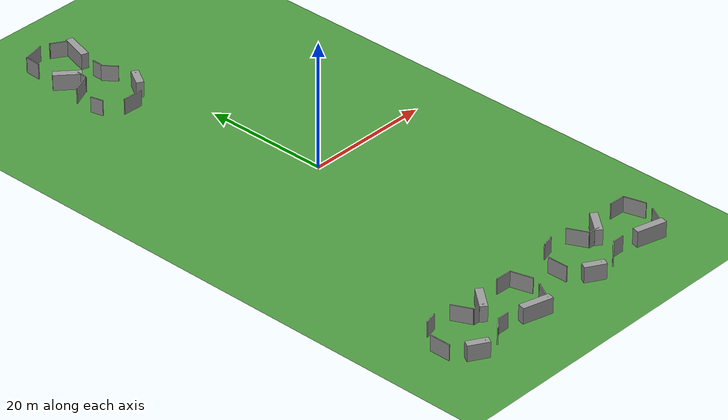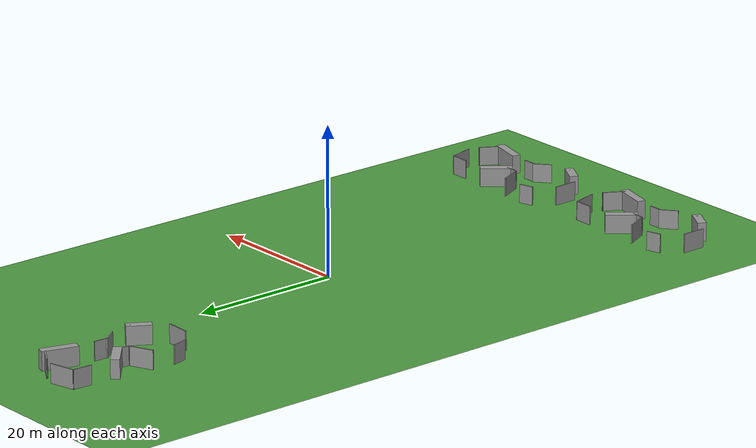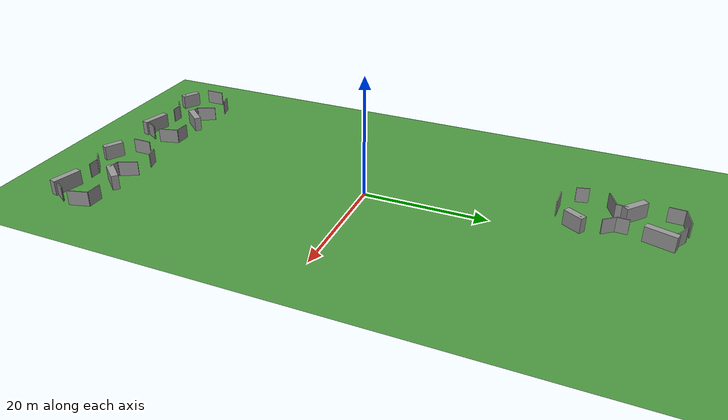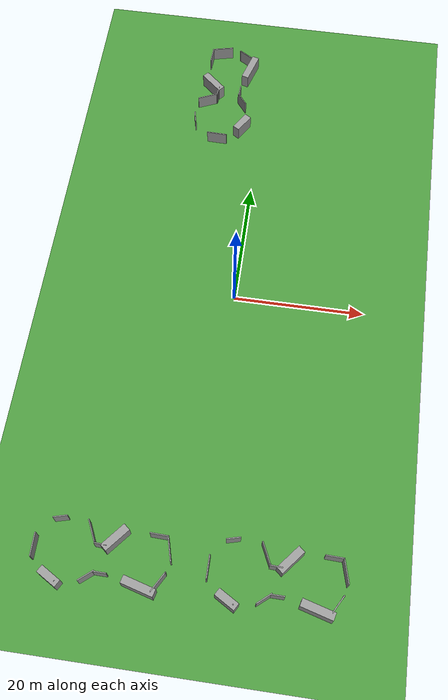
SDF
<sdf version="1.7">
 <world name="default">
  <light name="sun" type="directional">
   <pose>0 0 10 0 -0 0</pose>
   <diffuse>0.8 0.8 0.8 1</diffuse>
   <specular>0.2 0.2 0.2 1</specular>
   <attenuation>
    <range>1000</range>
    <constant>0.9</constant>
    <linear>0.01</linear>
    <quadratic>0.001</quadratic>
   </attenuation>
   <direction>-0.5 0.1 -0.9</direction>
   <spot><inner_angle>0</inner_angle><outer_angle>0</outer_angle><falloff>0</falloff></spot>
  </light>
  <model name="ground_plane">
   <static>1</static>
   <link name="link">
    <collision name="collision">
     <geometry><plane><normal>0 0 1</normal><size>100 100</size></plane></geometry>
     <surface><friction><ode><mu>100</mu><mu2>50</mu2></ode></friction></surface>
    </collision>
    <visual name="visual">
     <cast_shadows>0</cast_shadows>
     <geometry><plane><normal>0 0 1</normal><size>100 100</size></plane></geometry>
     <material>
      <script><uri>file://media/materials/scripts/gazebo.material</uri><name>Gazebo/Grass</name></script>
     </material>
    </visual>
   </link>
  </model>
  <gravity>0 0 -9.8</gravity>
  <magnetic_field>6e-06 2.3e-05 -4.2e-05</magnetic_field>
  <atmosphere type="adiabatic"/>
  <physics name="default_physics" default="0" type="ode">
   <max_step_size>0.001</max_step_size>
   <real_time_factor>1</real_time_factor>
   <real_time_update_rate>1000</real_time_update_rate>
  </physics>
  <scene><ambient>0.4 0.4 0.4 1</ambient><background>0.7 0.7 0.7 1</background><shadows>1</shadows></scene>
  <audio><device>default</device></audio>
  <spherical_coordinates>
   <surface_model>EARTH_WGS84</surface_model>
   <latitude_deg>0</latitude_deg>
   <longitude_deg>0</longitude_deg>
   <elevation>0</elevation>
   <heading_deg>0</heading_deg>
  </spherical_coordinates>
  <model name="TestBuilding">
   <pose>-12.3162 -42.0159 0 0 -0 0</pose>
   <link name="Wall_0">
    <collision name="Wall_0_Collision">
     <geometry><box><size>3.25 0.15 2.5</size></box></geometry>
     <pose>0 0 1.25 0 -0 0</pose>
    </collision>
    <visual name="Wall_0_Visual">
     <pose>0 0 1.25 0 -0 0</pose>
     <geometry><box><size>3.25 0.15 2.5</size></box></geometry>
     <material>
      <script><uri>file://media/materials/scripts/gazebo.material</uri><name>Gazebo/Grey</name></script>
      <ambient>1 1 1 1</ambient>
     </material>
     <meta><layer>0</layer></meta>
    </visual>
    <pose>-9.39109 0.282277 0 0 -0 1.5708</pose>
   </link>
   <link name="Wall_11">
    <collision name="Wall_11_Collision">
     <geometry><box><size>2.50475 0.15 2.5</size></box></geometry>
     <pose>0 0 1.25 0 -0 0</pose>
    </collision>
    <visual name="Wall_11_Visual">
     <pose>0 0 1.25 0 -0 0</pose>
     <geometry><box><size>2.50475 0.15 2.5</size></box></geometry>
     <material>
      <script><uri>file://media/materials/scripts/gazebo.material</uri><name>Gazebo/Grey</name></script>
      <ambient>1 1 1 1</ambient>
     </material>
     <meta><layer>0</layer></meta>
    </visual>
    <pose>-1.4998 -2.72673 0 0 -0 0.687447</pose>
   </link>
   <link name="Wall_12">
    <collision name="Wall_12_Collision">
     <geometry><box><size>1.90786 0.15 2.5</size></box></geometry>
     <pose>0 0 1.25 0 -0 0</pose>
    </collision>
    <visual name="Wall_12_Visual">
     <pose>0 0 1.25 0 -0 0</pose>
     <geometry><box><size>1.90786 0.15 2.5</size></box></geometry>
     <material>
      <script><uri>file://media/materials/scripts/gazebo.material</uri><name>Gazebo/Grey</name></script>
      <ambient>1 1 1 1</ambient>
     </material>
     <meta><layer>0</layer></meta>
    </visual>
    <pose>0.242546 -2.07721 0 0 -0 -0.005173</pose>
   </link>
   <link name="Wall_14">
    <collision name="Wall_14_Collision">
     <geometry><box><size>4.74042 1.14 2.5</size></box></geometry>
     <pose>0 0 1.25 0 -0 0</pose>
    </collision>
    <visual name="Wall_14_Visual">
     <pose>0 0 1.25 0 -0 0</pose>
     <geometry><box><size>4.74042 1.14 2.5</size></box></geometry>
     <material>
      <script><uri>file://media/materials/scripts/gazebo.material</uri><name>Gazebo/Grey</name></script>
      <ambient>1 1 1 1</ambient>
     </material>
     <meta><layer>0</layer></meta>
    </visual>
    <pose>5.6341 -3.0791 0 0 -0 -0.261819</pose>
   </link>
   <link name="Wall_15">
    <collision name="Wall_15_Collision">
     <geometry><box><size>3.25 0.15 2.5</size></box></geometry>
     <pose>0 0 1.25 0 -0 0</pose>
    </collision>
    <visual name="Wall_15_Visual">
     <pose>0 0 1.25 0 -0 0</pose>
     <geometry><box><size>3.25 0.15 2.5</size></box></geometry>
     <material>
      <script><uri>file://media/materials/scripts/gazebo.material</uri><name>Gazebo/Grey</name></script>
      <ambient>1 1 1 1</ambient>
     </material>
     <meta><layer>0</layer></meta>
    </visual>
    <pose>8.14796 -2.20274 0 0 -0 1.04729</pose>
   </link>
   <link name="Wall_16">
    <collision name="Wall_16_Collision">
     <geometry><box><size>0.15 0.15 2.5</size></box></geometry>
     <pose>0 0 1.25 0 -0 0</pose>
    </collision>
    <visual name="Wall_16_Visual">
     <pose>0 0 1.25 0 -0 0</pose>
     <geometry><box><size>0.15 0.15 2.5</size></box></geometry>
     <material>
      <script><uri>file://media/materials/scripts/gazebo.material</uri><name>Gazebo/Grey</name></script>
      <ambient>1 1 1 1</ambient>
     </material>
     <meta><layer>0</layer></meta>
    </visual>
    <pose>8.92282 -0.860369 0 0 -0 0</pose>
   </link>
   <link name="Wall_18">
    <collision name="Wall_18_Collision">
     <geometry><box><size>3.5 0.15 2.5</size></box></geometry>
     <pose>0 0 1.25 0 -0 0</pose>
    </collision>
    <visual name="Wall_18_Visual">
     <pose>0 0 1.25 0 -0 0</pose>
     <geometry><box><size>3.5 0.15 2.5</size></box></geometry>
     <material>
      <script><uri>file://media/materials/scripts/gazebo.material</uri><name>Gazebo/Grey</name></script>
      <ambient>1 1 1 1</ambient>
     </material>
     <meta><layer>0</layer></meta>
    </visual>
    <pose>8.94071 2.30098 0 0 -0 1.8326</pose>
   </link>
   <link name="Wall_19">
    <collision name="Wall_19_Collision">
     <geometry><box><size>2.60792 0.15 2.5</size></box></geometry>
     <pose>0 0 1.25 0 -0 0</pose>
    </collision>
    <visual name="Wall_19_Visual">
     <pose>0 0 1.25 0 -0 0</pose>
     <geometry><box><size>2.60792 0.15 2.5</size></box></geometry>
     <material>
      <script><uri>file://media/materials/scripts/gazebo.material</uri><name>Gazebo/Grey</name></script>
      <ambient>1 1 1 1</ambient>
     </material>
     <meta><layer>0</layer></meta>
    </visual>
    <pose>7.27901 3.96268 0 0 -0 3.10596</pose>
   </link>
   <link name="Wall_21">
    <collision name="Wall_21_Collision">
     <geometry><box><size>4.20051 1.14 2.5</size></box></geometry>
     <pose>0 0 1.25 0 -0 0</pose>
    </collision>
    <visual name="Wall_21_Visual">
     <pose>0 0 1.25 0 -0 0</pose>
     <geometry><box><size>4.20051 1.14 2.5</size></box></geometry>
     <material>
      <script><uri>file://media/materials/scripts/gazebo.material</uri><name>Gazebo/Grey</name></script>
      <ambient>1 1 1 1</ambient>
     </material>
     <meta><layer>0</layer></meta>
    </visual>
    <pose>1.4321 2.7309 0 0 -0 -2.26503</pose>
   </link>
   <link name="Wall_22">
    <collision name="Wall_22_Collision">
     <geometry><box><size>1.81594 0.15 2.5</size></box></geometry>
     <pose>0 0 1.25 0 -0 0</pose>
    </collision>
    <visual name="Wall_22_Visual">
     <pose>0 0 1.25 0 -0 0</pose>
     <geometry><box><size>1.81594 0.15 2.5</size></box></geometry>
     <material>
      <script><uri>file://media/materials/scripts/gazebo.material</uri><name>Gazebo/Grey</name></script>
      <ambient>1 1 1 1</ambient>
     </material>
     <meta><layer>0</layer></meta>
    </visual>
    <pose>-0.378827 1.59643 0 0 -0 3.09171</pose>
   </link>
   <link name="Wall_23">
    <collision name="Wall_23_Collision">
     <geometry><box><size>0.15 0.15 2.5</size></box></geometry>
     <pose>0 0 1.25 0 -0 0</pose>
    </collision>
    <visual name="Wall_23_Visual">
     <pose>0 0 1.25 0 -0 0</pose>
     <geometry><box><size>0.15 0.15 2.5</size></box></geometry>
     <material>
      <script><uri>file://media/materials/scripts/gazebo.material</uri><name>Gazebo/Grey</name></script>
      <ambient>1 1 1 1</ambient>
     </material>
     <meta><layer>0</layer></meta>
    </visual>
    <pose>-1.21076 1.73101 0 0 -0 0</pose>
   </link>
   <link name="Wall_25">
    <collision name="Wall_25_Collision">
     <geometry><box><size>3.24004 1.14 2.5</size></box></geometry>
     <pose>0 0 1.25 0 -0 0</pose>
    </collision>
    <visual name="Wall_25_Visual">
     <pose>0 0 1.25 0 -0 0</pose>
     <geometry><box><size>3.24004 1.14 2.5</size></box></geometry>
     <material>
      <script><uri>file://media/materials/scripts/gazebo.material</uri><name>Gazebo/Grey</name></script>
      <ambient>1 1 1 1</ambient>
     </material>
     <meta><layer>0</layer></meta>
    </visual>
    <pose>-6.3549 -3.5061 0 0 -0 -0.523754</pose>
   </link>
   <link name="Wall_26">
    <collision name="Wall_26_Collision">
     <geometry><box><size>0.15 0.15 2.5</size></box></geometry>
     <pose>0 0 1.25 0 -0 0</pose>
    </collision>
    <visual name="Wall_26_Visual">
     <pose>0 0 1.25 0 -0 0</pose>
     <geometry><box><size>0.15 0.15 2.5</size></box></geometry>
     <material>
      <script><uri>file://media/materials/scripts/gazebo.material</uri><name>Gazebo/Grey</name></script>
      <ambient>1 1 1 1</ambient>
     </material>
     <meta><layer>0</layer></meta>
    </visual>
    <pose>-5.4459 -4.0311 0 0 -0 0</pose>
   </link>
   <link name="Wall_28">
    <collision name="Wall_28_Collision">
     <geometry><box><size>2 0.15 2.5</size></box></geometry>
     <pose>0 0 1.25 0 -0 0</pose>
    </collision>
    <visual name="Wall_28_Visual">
     <pose>0 0 1.25 0 -0 0</pose>
     <geometry><box><size>2 0.15 2.5</size></box></geometry>
     <material>
      <script><uri>file://media/materials/scripts/gazebo.material</uri><name>Gazebo/Grey</name></script>
      <ambient>1 1 1 1</ambient>
     </material>
     <meta><layer>0</layer></meta>
    </visual>
    <pose>-6.52358 4.47866 0 0 -0 0.261799</pose>
   </link>
   <link name="Wall_8">
    <collision name="Wall_8_Collision">
     <geometry><box><size>3.28723 0.15 2.5</size></box></geometry>
     <pose>0 0 1.25 0 -0 0</pose>
    </collision>
    <visual name="Wall_8_Visual">
     <pose>0 0 1.25 0 -0 0</pose>
     <geometry><box><size>3.28723 0.15 2.5</size></box></geometry>
     <material>
      <script><uri>file://media/materials/scripts/gazebo.material</uri><name>Gazebo/Grey</name></script>
      <ambient>1 1 1 1</ambient>
     </material>
     <meta><layer>0</layer></meta>
    </visual>
    <pose>-1.88343 3.14807 0 0 -0 -1.12759</pose>
   </link>
   <static>1</static>
  </model>
  <model name="TestBuilding_0">
   <pose>11.5046 -41.5796 0 0 -0 0</pose>
   <link name="Wall_0">
    <collision name="Wall_0_Collision">
     <geometry><box><size>3.25 0.15 2.5</size></box></geometry>
     <pose>0 0 1.25 0 -0 0</pose>
    </collision>
    <visual name="Wall_0_Visual">
     <pose>0 0 1.25 0 -0 0</pose>
     <geometry><box><size>3.25 0.15 2.5</size></box></geometry>
     <material>
      <script><uri>file://media/materials/scripts/gazebo.material</uri><name>Gazebo/Grey</name></script>
      <ambient>1 1 1 1</ambient>
     </material>
     <meta><layer>0</layer></meta>
    </visual>
    <pose>-9.39109 0.282277 0 0 -0 1.5708</pose>
   </link>
   <link name="Wall_11">
    <collision name="Wall_11_Collision">
     <geometry><box><size>2.50475 0.15 2.5</size></box></geometry>
     <pose>0 0 1.25 0 -0 0</pose>
    </collision>
    <visual name="Wall_11_Visual">
     <pose>0 0 1.25 0 -0 0</pose>
     <geometry><box><size>2.50475 0.15 2.5</size></box></geometry>
     <material>
      <script><uri>file://media/materials/scripts/gazebo.material</uri><name>Gazebo/Grey</name></script>
      <ambient>1 1 1 1</ambient>
     </material>
     <meta><layer>0</layer></meta>
    </visual>
    <pose>-1.4998 -2.72673 0 0 -0 0.687447</pose>
   </link>
   <link name="Wall_12">
    <collision name="Wall_12_Collision">
     <geometry><box><size>1.90786 0.15 2.5</size></box></geometry>
     <pose>0 0 1.25 0 -0 0</pose>
    </collision>
    <visual name="Wall_12_Visual">
     <pose>0 0 1.25 0 -0 0</pose>
     <geometry><box><size>1.90786 0.15 2.5</size></box></geometry>
     <material>
      <script><uri>file://media/materials/scripts/gazebo.material</uri><name>Gazebo/Grey</name></script>
      <ambient>1 1 1 1</ambient>
     </material>
     <meta><layer>0</layer></meta>
    </visual>
    <pose>0.242546 -2.07721 0 0 -0 -0.005173</pose>
   </link>
   <link name="Wall_14">
    <collision name="Wall_14_Collision">
     <geometry><box><size>4.74042 1.14 2.5</size></box></geometry>
     <pose>0 0 1.25 0 -0 0</pose>
    </collision>
    <visual name="Wall_14_Visual">
     <pose>0 0 1.25 0 -0 0</pose>
     <geometry><box><size>4.74042 1.14 2.5</size></box></geometry>
     <material>
      <script><uri>file://media/materials/scripts/gazebo.material</uri><name>Gazebo/Grey</name></script>
      <ambient>1 1 1 1</ambient>
     </material>
     <meta><layer>0</layer></meta>
    </visual>
    <pose>5.6341 -3.0791 0 0 -0 -0.261819</pose>
   </link>
   <link name="Wall_15">
    <collision name="Wall_15_Collision">
     <geometry><box><size>3.25 0.15 2.5</size></box></geometry>
     <pose>0 0 1.25 0 -0 0</pose>
    </collision>
    <visual name="Wall_15_Visual">
     <pose>0 0 1.25 0 -0 0</pose>
     <geometry><box><size>3.25 0.15 2.5</size></box></geometry>
     <material>
      <script><uri>file://media/materials/scripts/gazebo.material</uri><name>Gazebo/Grey</name></script>
      <ambient>1 1 1 1</ambient>
     </material>
     <meta><layer>0</layer></meta>
    </visual>
    <pose>8.14796 -2.20274 0 0 -0 1.04729</pose>
   </link>
   <link name="Wall_16">
    <collision name="Wall_16_Collision">
     <geometry><box><size>0.15 0.15 2.5</size></box></geometry>
     <pose>0 0 1.25 0 -0 0</pose>
    </collision>
    <visual name="Wall_16_Visual">
     <pose>0 0 1.25 0 -0 0</pose>
     <geometry><box><size>0.15 0.15 2.5</size></box></geometry>
     <material>
      <script><uri>file://media/materials/scripts/gazebo.material</uri><name>Gazebo/Grey</name></script>
      <ambient>1 1 1 1</ambient>
     </material>
     <meta><layer>0</layer></meta>
    </visual>
    <pose>8.92282 -0.860369 0 0 -0 0</pose>
   </link>
   <link name="Wall_18">
    <collision name="Wall_18_Collision">
     <geometry><box><size>3.5 0.15 2.5</size></box></geometry>
     <pose>0 0 1.25 0 -0 0</pose>
    </collision>
    <visual name="Wall_18_Visual">
     <pose>0 0 1.25 0 -0 0</pose>
     <geometry><box><size>3.5 0.15 2.5</size></box></geometry>
     <material>
      <script><uri>file://media/materials/scripts/gazebo.material</uri><name>Gazebo/Grey</name></script>
      <ambient>1 1 1 1</ambient>
     </material>
     <meta><layer>0</layer></meta>
    </visual>
    <pose>8.94071 2.30098 0 0 -0 1.8326</pose>
   </link>
   <link name="Wall_19">
    <collision name="Wall_19_Collision">
     <geometry><box><size>2.60792 0.15 2.5</size></box></geometry>
     <pose>0 0 1.25 0 -0 0</pose>
    </collision>
    <visual name="Wall_19_Visual">
     <pose>0 0 1.25 0 -0 0</pose>
     <geometry><box><size>2.60792 0.15 2.5</size></box></geometry>
     <material>
      <script><uri>file://media/materials/scripts/gazebo.material</uri><name>Gazebo/Grey</name></script>
      <ambient>1 1 1 1</ambient>
     </material>
     <meta><layer>0</layer></meta>
    </visual>
    <pose>7.27901 3.96268 0 0 -0 3.10596</pose>
   </link>
   <link name="Wall_21">
    <collision name="Wall_21_Collision">
     <geometry><box><size>4.20051 1.14 2.5</size></box></geometry>
     <pose>0 0 1.25 0 -0 0</pose>
    </collision>
    <visual name="Wall_21_Visual">
     <pose>0 0 1.25 0 -0 0</pose>
     <geometry><box><size>4.20051 1.14 2.5</size></box></geometry>
     <material>
      <script><uri>file://media/materials/scripts/gazebo.material</uri><name>Gazebo/Grey</name></script>
      <ambient>1 1 1 1</ambient>
     </material>
     <meta><layer>0</layer></meta>
    </visual>
    <pose>1.4321 2.7309 0 0 -0 -2.26503</pose>
   </link>
   <link name="Wall_22">
    <collision name="Wall_22_Collision">
     <geometry><box><size>1.81594 0.15 2.5</size></box></geometry>
     <pose>0 0 1.25 0 -0 0</pose>
    </collision>
    <visual name="Wall_22_Visual">
     <pose>0 0 1.25 0 -0 0</pose>
     <geometry><box><size>1.81594 0.15 2.5</size></box></geometry>
     <material>
      <script><uri>file://media/materials/scripts/gazebo.material</uri><name>Gazebo/Grey</name></script>
      <ambient>1 1 1 1</ambient>
     </material>
     <meta><layer>0</layer></meta>
    </visual>
    <pose>-0.378827 1.59643 0 0 -0 3.09171</pose>
   </link>
   <link name="Wall_23">
    <collision name="Wall_23_Collision">
     <geometry><box><size>0.15 0.15 2.5</size></box></geometry>
     <pose>0 0 1.25 0 -0 0</pose>
    </collision>
    <visual name="Wall_23_Visual">
     <pose>0 0 1.25 0 -0 0</pose>
     <geometry><box><size>0.15 0.15 2.5</size></box></geometry>
     <material>
      <script><uri>file://media/materials/scripts/gazebo.material</uri><name>Gazebo/Grey</name></script>
      <ambient>1 1 1 1</ambient>
     </material>
     <meta><layer>0</layer></meta>
    </visual>
    <pose>-1.21076 1.73101 0 0 -0 0</pose>
   </link>
   <link name="Wall_25">
    <collision name="Wall_25_Collision">
     <geometry><box><size>3.24004 1.14 2.5</size></box></geometry>
     <pose>0 0 1.25 0 -0 0</pose>
    </collision>
    <visual name="Wall_25_Visual">
     <pose>0 0 1.25 0 -0 0</pose>
     <geometry><box><size>3.24004 1.14 2.5</size></box></geometry>
     <material>
      <script><uri>file://media/materials/scripts/gazebo.material</uri><name>Gazebo/Grey</name></script>
      <ambient>1 1 1 1</ambient>
     </material>
     <meta><layer>0</layer></meta>
    </visual>
    <pose>-6.3549 -3.5061 0 0 -0 -0.523754</pose>
   </link>
   <link name="Wall_26">
    <collision name="Wall_26_Collision">
     <geometry><box><size>0.15 0.15 2.5</size></box></geometry>
     <pose>0 0 1.25 0 -0 0</pose>
    </collision>
    <visual name="Wall_26_Visual">
     <pose>0 0 1.25 0 -0 0</pose>
     <geometry><box><size>0.15 0.15 2.5</size></box></geometry>
     <material>
      <script><uri>file://media/materials/scripts/gazebo.material</uri><name>Gazebo/Grey</name></script>
      <ambient>1 1 1 1</ambient>
     </material>
     <meta><layer>0</layer></meta>
    </visual>
    <pose>-5.4459 -4.0311 0 0 -0 0</pose>
   </link>
   <link name="Wall_28">
    <collision name="Wall_28_Collision">
     <geometry><box><size>2 0.15 2.5</size></box></geometry>
     <pose>0 0 1.25 0 -0 0</pose>
    </collision>
    <visual name="Wall_28_Visual">
     <pose>0 0 1.25 0 -0 0</pose>
     <geometry><box><size>2 0.15 2.5</size></box></geometry>
     <material>
      <script><uri>file://media/materials/scripts/gazebo.material</uri><name>Gazebo/Grey</name></script>
      <ambient>1 1 1 1</ambient>
     </material>
     <meta><layer>0</layer></meta>
    </visual>
    <pose>-6.52358 4.47866 0 0 -0 0.261799</pose>
   </link>
   <link name="Wall_8">
    <collision name="Wall_8_Collision">
     <geometry><box><size>3.28723 0.15 2.5</size></box></geometry>
     <pose>0 0 1.25 0 -0 0</pose>
    </collision>
    <visual name="Wall_8_Visual">
     <pose>0 0 1.25 0 -0 0</pose>
     <geometry><box><size>3.28723 0.15 2.5</size></box></geometry>
     <material>
      <script><uri>file://media/materials/scripts/gazebo.material</uri><name>Gazebo/Grey</name></script>
      <ambient>1 1 1 1</ambient>
     </material>
     <meta><layer>0</layer></meta>
    </visual>
    <pose>-1.88343 3.14807 0 0 -0 -1.12759</pose>
   </link>
   <static>1</static>
  </model>
  <model name="TestBuilding_1">
   <pose>-6.47795 38.4325 0 0 -0 1.54554</pose>
   <link name="Wall_0">
    <collision name="Wall_0_Collision">
     <geometry><box><size>3.25 0.15 2.5</size></box></geometry>
     <pose>0 0 1.25 0 -0 0</pose>
    </collision>
    <visual name="Wall_0_Visual">
     <pose>0 0 1.25 0 -0 0</pose>
     <geometry><box><size>3.25 0.15 2.5</size></box></geometry>
     <material>
      <script><uri>file://media/materials/scripts/gazebo.material</uri><name>Gazebo/Grey</name></script>
      <ambient>1 1 1 1</ambient>
     </material>
     <meta><layer>0</layer></meta>
    </visual>
    <pose>-9.39109 0.282277 0 0 -0 1.5708</pose>
   </link>
   <link name="Wall_11">
    <collision name="Wall_11_Collision">
     <geometry><box><size>2.50475 0.15 2.5</size></box></geometry>
     <pose>0 0 1.25 0 -0 0</pose>
    </collision>
    <visual name="Wall_11_Visual">
     <pose>0 0 1.25 0 -0 0</pose>
     <geometry><box><size>2.50475 0.15 2.5</size></box></geometry>
     <material>
      <script><uri>file://media/materials/scripts/gazebo.material</uri><name>Gazebo/Grey</name></script>
      <ambient>1 1 1 1</ambient>
     </material>
     <meta><layer>0</layer></meta>
    </visual>
    <pose>-1.4998 -2.72673 0 0 -0 0.687447</pose>
   </link>
   <link name="Wall_12">
    <collision name="Wall_12_Collision">
     <geometry><box><size>1.90786 0.15 2.5</size></box></geometry>
     <pose>0 0 1.25 0 -0 0</pose>
    </collision>
    <visual name="Wall_12_Visual">
     <pose>0 0 1.25 0 -0 0</pose>
     <geometry><box><size>1.90786 0.15 2.5</size></box></geometry>
     <material>
      <script><uri>file://media/materials/scripts/gazebo.material</uri><name>Gazebo/Grey</name></script>
      <ambient>1 1 1 1</ambient>
     </material>
     <meta><layer>0</layer></meta>
    </visual>
    <pose>0.242546 -2.07721 0 0 -0 -0.005173</pose>
   </link>
   <link name="Wall_14">
    <collision name="Wall_14_Collision">
     <geometry><box><size>4.74042 1.14 2.5</size></box></geometry>
     <pose>0 0 1.25 0 -0 0</pose>
    </collision>
    <visual name="Wall_14_Visual">
     <pose>0 0 1.25 0 -0 0</pose>
     <geometry><box><size>4.74042 1.14 2.5</size></box></geometry>
     <material>
      <script><uri>file://media/materials/scripts/gazebo.material</uri><name>Gazebo/Grey</name></script>
      <ambient>1 1 1 1</ambient>
     </material>
     <meta><layer>0</layer></meta>
    </visual>
    <pose>5.6341 -3.0791 0 0 -0 -0.261819</pose>
   </link>
   <link name="Wall_15">
    <collision name="Wall_15_Collision">
     <geometry><box><size>3.25 0.15 2.5</size></box></geometry>
     <pose>0 0 1.25 0 -0 0</pose>
    </collision>
    <visual name="Wall_15_Visual">
     <pose>0 0 1.25 0 -0 0</pose>
     <geometry><box><size>3.25 0.15 2.5</size></box></geometry>
     <material>
      <script><uri>file://media/materials/scripts/gazebo.material</uri><name>Gazebo/Grey</name></script>
      <ambient>1 1 1 1</ambient>
     </material>
     <meta><layer>0</layer></meta>
    </visual>
    <pose>8.14796 -2.20274 0 0 -0 1.04729</pose>
   </link>
   <link name="Wall_16">
    <collision name="Wall_16_Collision">
     <geometry><box><size>0.15 0.15 2.5</size></box></geometry>
     <pose>0 0 1.25 0 -0 0</pose>
    </collision>
    <visual name="Wall_16_Visual">
     <pose>0 0 1.25 0 -0 0</pose>
     <geometry><box><size>0.15 0.15 2.5</size></box></geometry>
     <material>
      <script><uri>file://media/materials/scripts/gazebo.material</uri><name>Gazebo/Grey</name></script>
      <ambient>1 1 1 1</ambient>
     </material>
     <meta><layer>0</layer></meta>
    </visual>
    <pose>8.92282 -0.860369 0 0 -0 0</pose>
   </link>
   <link name="Wall_18">
    <collision name="Wall_18_Collision">
     <geometry><box><size>3.5 0.15 2.5</size></box></geometry>
     <pose>0 0 1.25 0 -0 0</pose>
    </collision>
    <visual name="Wall_18_Visual">
     <pose>0 0 1.25 0 -0 0</pose>
     <geometry><box><size>3.5 0.15 2.5</size></box></geometry>
     <material>
      <script><uri>file://media/materials/scripts/gazebo.material</uri><name>Gazebo/Grey</name></script>
      <ambient>1 1 1 1</ambient>
     </material>
     <meta><layer>0</layer></meta>
    </visual>
    <pose>8.94071 2.30098 0 0 -0 1.8326</pose>
   </link>
   <link name="Wall_19">
    <collision name="Wall_19_Collision">
     <geometry><box><size>2.60792 0.15 2.5</size></box></geometry>
     <pose>0 0 1.25 0 -0 0</pose>
    </collision>
    <visual name="Wall_19_Visual">
     <pose>0 0 1.25 0 -0 0</pose>
     <geometry><box><size>2.60792 0.15 2.5</size></box></geometry>
     <material>
      <script><uri>file://media/materials/scripts/gazebo.material</uri><name>Gazebo/Grey</name></script>
      <ambient>1 1 1 1</ambient>
     </material>
     <meta><layer>0</layer></meta>
    </visual>
    <pose>7.27901 3.96268 0 0 -0 3.10596</pose>
   </link>
   <link name="Wall_21">
    <collision name="Wall_21_Collision">
     <geometry><box><size>4.20051 1.14 2.5</size></box></geometry>
     <pose>0 0 1.25 0 -0 0</pose>
    </collision>
    <visual name="Wall_21_Visual">
     <pose>0 0 1.25 0 -0 0</pose>
     <geometry><box><size>4.20051 1.14 2.5</size></box></geometry>
     <material>
      <script><uri>file://media/materials/scripts/gazebo.material</uri><name>Gazebo/Grey</name></script>
      <ambient>1 1 1 1</ambient>
     </material>
     <meta><layer>0</layer></meta>
    </visual>
    <pose>1.4321 2.7309 0 0 -0 -2.26503</pose>
   </link>
   <link name="Wall_22">
    <collision name="Wall_22_Collision">
     <geometry><box><size>1.81594 0.15 2.5</size></box></geometry>
     <pose>0 0 1.25 0 -0 0</pose>
    </collision>
    <visual name="Wall_22_Visual">
     <pose>0 0 1.25 0 -0 0</pose>
     <geometry><box><size>1.81594 0.15 2.5</size></box></geometry>
     <material>
      <script><uri>file://media/materials/scripts/gazebo.material</uri><name>Gazebo/Grey</name></script>
      <ambient>1 1 1 1</ambient>
     </material>
     <meta><layer>0</layer></meta>
    </visual>
    <pose>-0.378827 1.59643 0 0 -0 3.09171</pose>
   </link>
   <link name="Wall_23">
    <collision name="Wall_23_Collision">
     <geometry><box><size>0.15 0.15 2.5</size></box></geometry>
     <pose>0 0 1.25 0 -0 0</pose>
    </collision>
    <visual name="Wall_23_Visual">
     <pose>0 0 1.25 0 -0 0</pose>
     <geometry><box><size>0.15 0.15 2.5</size></box></geometry>
     <material>
      <script><uri>file://media/materials/scripts/gazebo.material</uri><name>Gazebo/Grey</name></script>
      <ambient>1 1 1 1</ambient>
     </material>
     <meta><layer>0</layer></meta>
    </visual>
    <pose>-1.21076 1.73101 0 0 -0 0</pose>
   </link>
   <link name="Wall_25">
    <collision name="Wall_25_Collision">
     <geometry><box><size>3.24004 1.14 2.5</size></box></geometry>
     <pose>0 0 1.25 0 -0 0</pose>
    </collision>
    <visual name="Wall_25_Visual">
     <pose>0 0 1.25 0 -0 0</pose>
     <geometry><box><size>3.24004 1.14 2.5</size></box></geometry>
     <material>
      <script><uri>file://media/materials/scripts/gazebo.material</uri><name>Gazebo/Grey</name></script>
      <ambient>1 1 1 1</ambient>
     </material>
     <meta><layer>0</layer></meta>
    </visual>
    <pose>-6.3549 -3.5061 0 0 -0 -0.523754</pose>
   </link>
   <link name="Wall_26">
    <collision name="Wall_26_Collision">
     <geometry><box><size>0.15 0.15 2.5</size></box></geometry>
     <pose>0 0 1.25 0 -0 0</pose>
    </collision>
    <visual name="Wall_26_Visual">
     <pose>0 0 1.25 0 -0 0</pose>
     <geometry><box><size>0.15 0.15 2.5</size></box></geometry>
     <material>
      <script><uri>file://media/materials/scripts/gazebo.material</uri><name>Gazebo/Grey</name></script>
      <ambient>1 1 1 1</ambient>
     </material>
     <meta><layer>0</layer></meta>
    </visual>
    <pose>-5.4459 -4.0311 0 0 -0 0</pose>
   </link>
   <link name="Wall_28">
    <collision name="Wall_28_Collision">
     <geometry><box><size>2 0.15 2.5</size></box></geometry>
     <pose>0 0 1.25 0 -0 0</pose>
    </collision>
    <visual name="Wall_28_Visual">
     <pose>0 0 1.25 0 -0 0</pose>
     <geometry><box><size>2 0.15 2.5</size></box></geometry>
     <material>
      <script><uri>file://media/materials/scripts/gazebo.material</uri><name>Gazebo/Grey</name></script>
      <ambient>1 1 1 1</ambient>
     </material>
     <meta><layer>0</layer></meta>
    </visual>
    <pose>-6.52358 4.47866 0 0 -0 0.261799</pose>
   </link>
   <link name="Wall_8">
    <collision name="Wall_8_Collision">
     <geometry><box><size>3.28723 0.15 2.5</size></box></geometry>
     <pose>0 0 1.25 0 -0 0</pose>
    </collision>
    <visual name="Wall_8_Visual">
     <pose>0 0 1.25 0 -0 0</pose>
     <geometry><box><size>3.28723 0.15 2.5</size></box></geometry>
     <material>
      <script><uri>file://media/materials/scripts/gazebo.material</uri><name>Gazebo/Grey</name></script>
      <ambient>1 1 1 1</ambient>
     </material>
     <meta><layer>0</layer></meta>
    </visual>
    <pose>-1.88343 3.14807 0 0 -0 -1.12759</pose>
   </link>
   <static>1</static>
  </model>
 </world>
</sdf>
